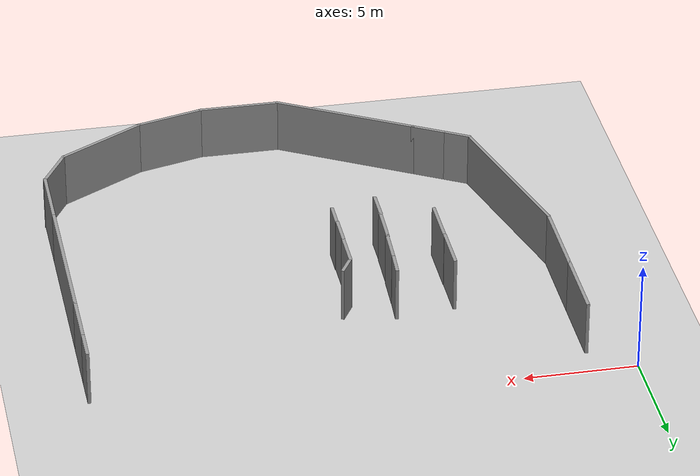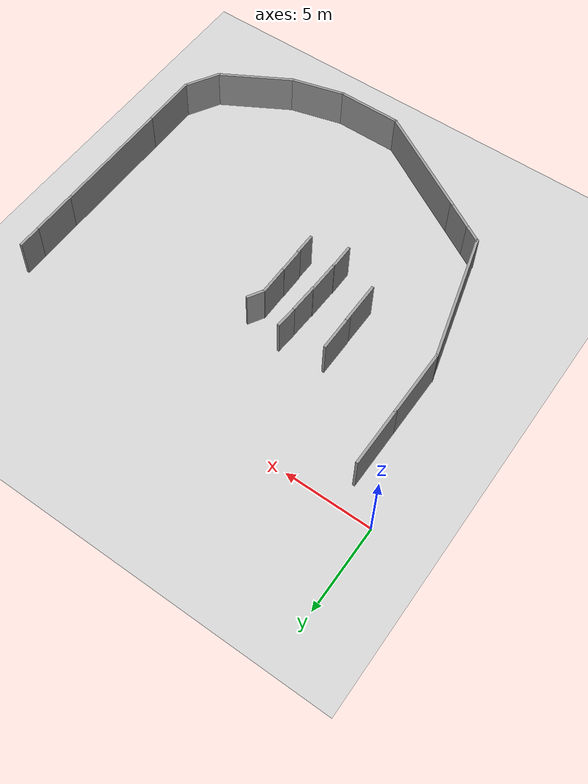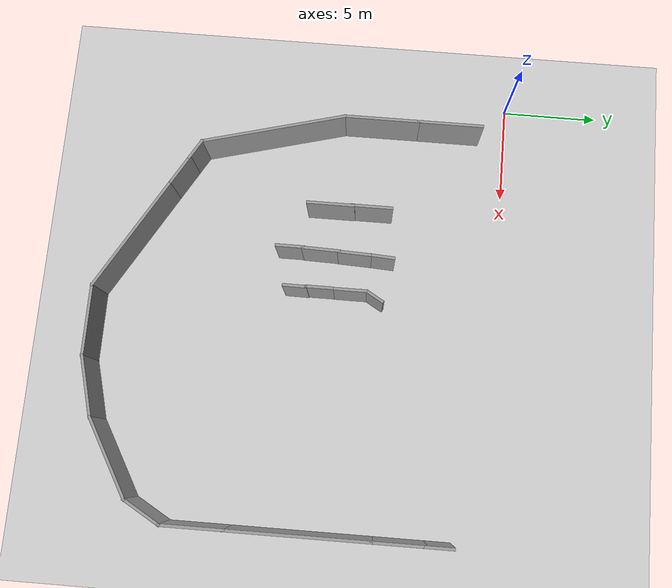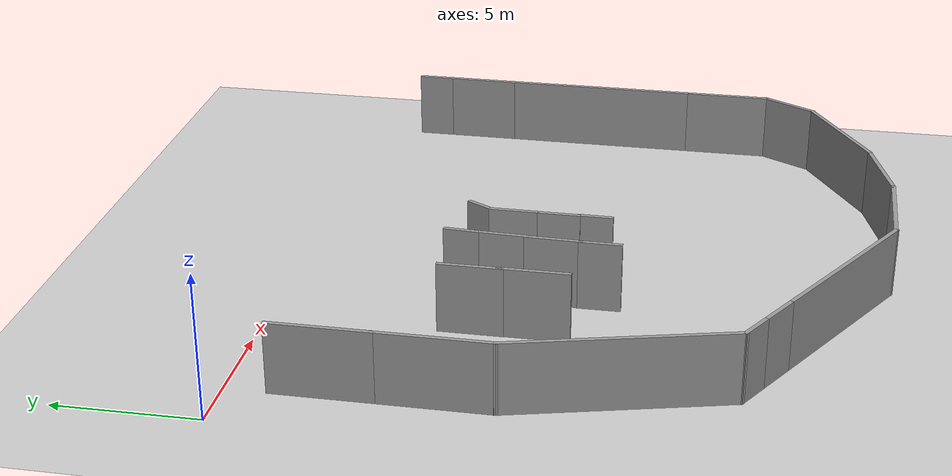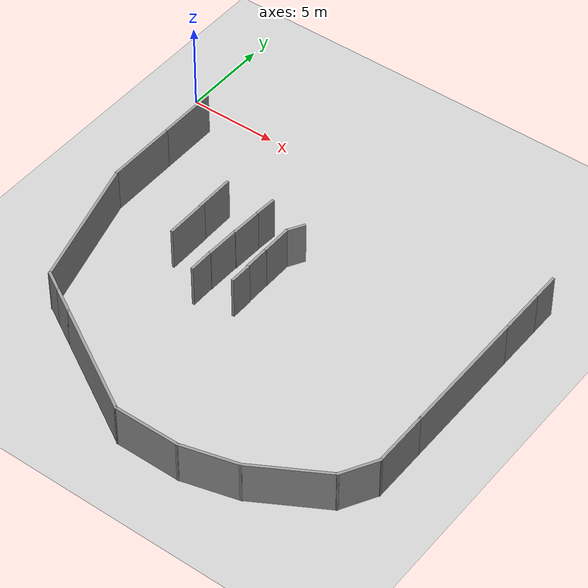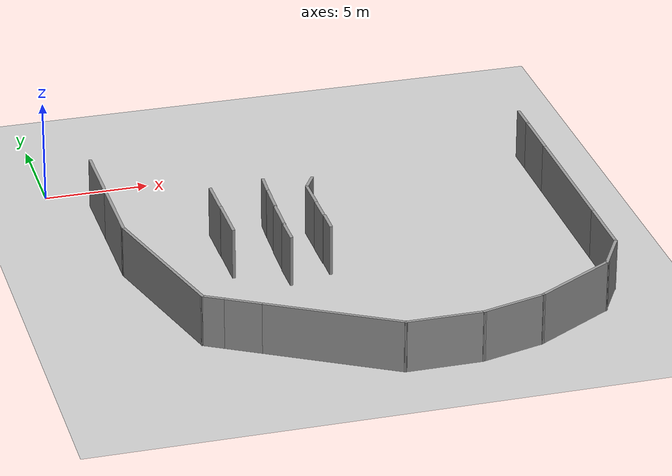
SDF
<sdf version="1.6">
 <world name="default">
  <model name="ground_plane">
   <static>1</static>
   <link name="link">
    <collision name="collision">
     <geometry><plane><normal>0 0 1</normal><size>100 100</size></plane></geometry>
     <surface><friction><ode><mu>100</mu><mu2>50</mu2></ode></friction></surface>
    </collision>
    <visual name="visual">
     <cast_shadows>0</cast_shadows>
     <geometry><plane><normal>0 0 1</normal><size>100 100</size></plane></geometry>
     <material>
      <script><uri>file://media/materials/scripts/gazebo.material</uri><name>Gazebo/Grey</name></script>
     </material>
    </visual>
   </link>
  </model>
  <model name="c-Snail_v3">
   <link name="Wall_19">
    <pose>0.800174 -5.81597 0 0 -0 0</pose>
    <visual name="Wall_19_Visual">
     <pose>0 0 1.25 0 -0 0</pose>
     <geometry><box><size>2.25 0.15 2.5</size></box></geometry>
     <material>
      <script><uri>file://media/materials/scripts/gazebo.material</uri><name>Gazebo/Grey</name></script>
      <ambient>1 1 1 1</ambient>
     </material>
     <meta><layer>0</layer></meta>
    </visual>
    <collision name="Wall_19_Collision">
     <pose>0 0 1.25 0 -0 0</pose>
     <geometry><box><size>2.25 0.15 2.5</size></box></geometry>
     <surface>
      <friction>
       <ode><mu>1</mu><mu2>1</mu2><fdir1>0 0 0</fdir1><slip1>0</slip1><slip2>0</slip2></ode>
       <torsional>
        <coefficient>1</coefficient>
        <patch_radius>0</patch_radius>
        <surface_radius>0</surface_radius>
        <use_patch_radius>1</use_patch_radius>
        <ode><slip>0</slip></ode>
       </torsional>
      </friction>
      <bounce><restitution_coefficient>0</restitution_coefficient><threshold>1e+06</threshold></bounce>
      <contact>
       <collide_without_contact>0</collide_without_contact>
       <collide_without_contact_bitmask>1</collide_without_contact_bitmask>
       <collide_bitmask>1</collide_bitmask>
       <ode>
        <soft_cfm>0</soft_cfm>
        <soft_erp>0.2</soft_erp>
        <kp>1e+13</kp>
        <kd>1</kd>
        <max_vel>0.01</max_vel>
        <min_depth>0</min_depth>
       </ode>
       <bullet>
        <split_impulse>1</split_impulse>
        <split_impulse_penetration_threshold>-0.01</split_impulse_penetration_threshold>
        <soft_cfm>0</soft_cfm>
        <soft_erp>0.2</soft_erp>
        <kp>1e+13</kp>
        <kd>1</kd>
       </bullet>
      </contact>
     </surface>
    </collision>
   </link>
   <link name="Wall_20">
    <pose>2.90214 -5.80096 0 0 -0 0</pose>
    <visual name="Wall_20_Visual">
     <pose>0 0 1.25 0 -0 0</pose>
     <geometry><box><size>2.5 0.15 2.5</size></box></geometry>
     <material>
      <script><uri>file://media/materials/scripts/gazebo.material</uri><name>Gazebo/Grey</name></script>
      <ambient>1 1 1 1</ambient>
     </material>
     <meta><layer>0</layer></meta>
    </visual>
    <collision name="Wall_20_Collision">
     <pose>0 0 1.25 0 -0 0</pose>
     <geometry><box><size>2.5 0.15 2.5</size></box></geometry>
     <surface>
      <friction>
       <ode><mu>1</mu><mu2>1</mu2><fdir1>0 0 0</fdir1><slip1>0</slip1><slip2>0</slip2></ode>
       <torsional>
        <coefficient>1</coefficient>
        <patch_radius>0</patch_radius>
        <surface_radius>0</surface_radius>
        <use_patch_radius>1</use_patch_radius>
        <ode><slip>0</slip></ode>
       </torsional>
      </friction>
      <bounce><restitution_coefficient>0</restitution_coefficient><threshold>1e+06</threshold></bounce>
      <contact>
       <collide_without_contact>0</collide_without_contact>
       <collide_without_contact_bitmask>1</collide_without_contact_bitmask>
       <collide_bitmask>1</collide_bitmask>
       <ode>
        <soft_cfm>0</soft_cfm>
        <soft_erp>0.2</soft_erp>
        <kp>1e+13</kp>
        <kd>1</kd>
        <max_vel>0.01</max_vel>
        <min_depth>0</min_depth>
       </ode>
       <bullet>
        <split_impulse>1</split_impulse>
        <split_impulse_penetration_threshold>-0.01</split_impulse_penetration_threshold>
        <soft_cfm>0</soft_cfm>
        <soft_erp>0.2</soft_erp>
        <kp>1e+13</kp>
        <kd>1</kd>
       </bullet>
      </contact>
     </surface>
    </collision>
   </link>
   <link name="Wall_46">
    <pose>0.001242 -3.22352 -0 0 0 -0.065231</pose>
    <visual name="Wall_46_Visual">
     <pose>0 0 1.25 0 -0 0</pose>
     <geometry><box><size>1.25 0.15 2.5</size></box></geometry>
     <material>
      <script><uri>file://media/materials/scripts/gazebo.material</uri><name>Gazebo/Grey</name></script>
      <ambient>1 1 1 1</ambient>
     </material>
     <meta><layer>0</layer></meta>
    </visual>
    <collision name="Wall_46_Collision">
     <pose>0 0 1.25 0 -0 0</pose>
     <geometry><box><size>1.25 0.15 2.5</size></box></geometry>
     <surface>
      <friction>
       <ode><mu>1</mu><mu2>1</mu2><fdir1>0 0 0</fdir1><slip1>0</slip1><slip2>0</slip2></ode>
       <torsional>
        <coefficient>1</coefficient>
        <patch_radius>0</patch_radius>
        <surface_radius>0</surface_radius>
        <use_patch_radius>1</use_patch_radius>
        <ode><slip>0</slip></ode>
       </torsional>
      </friction>
      <bounce><restitution_coefficient>0</restitution_coefficient><threshold>1e+06</threshold></bounce>
      <contact>
       <collide_without_contact>0</collide_without_contact>
       <collide_without_contact_bitmask>1</collide_without_contact_bitmask>
       <collide_bitmask>1</collide_bitmask>
       <ode>
        <soft_cfm>0</soft_cfm>
        <soft_erp>0.2</soft_erp>
        <kp>1e+13</kp>
        <kd>1</kd>
        <max_vel>0.01</max_vel>
        <min_depth>0</min_depth>
       </ode>
       <bullet>
        <split_impulse>1</split_impulse>
        <split_impulse_penetration_threshold>-0.01</split_impulse_penetration_threshold>
        <soft_cfm>0</soft_cfm>
        <soft_erp>0.2</soft_erp>
        <kp>1e+13</kp>
        <kd>1</kd>
       </bullet>
      </contact>
     </surface>
    </collision>
   </link>
   <link name="Wall_47">
    <pose>1.4692 -3.29142 0 0 0 -0.040966</pose>
    <visual name="Wall_47_Visual">
     <pose>0 0 1.25 0 -0 0</pose>
     <geometry><box><size>1.75 0.15 2.5</size></box></geometry>
     <material>
      <script><uri>file://media/materials/scripts/gazebo.material</uri><name>Gazebo/Grey</name></script>
      <ambient>1 1 1 1</ambient>
     </material>
     <meta><layer>0</layer></meta>
    </visual>
    <collision name="Wall_47_Collision">
     <pose>0 0 1.25 0 -0 0</pose>
     <geometry><box><size>1.75 0.15 2.5</size></box></geometry>
     <surface>
      <friction>
       <ode><mu>1</mu><mu2>1</mu2><fdir1>0 0 0</fdir1><slip1>0</slip1><slip2>0</slip2></ode>
       <torsional>
        <coefficient>1</coefficient>
        <patch_radius>0</patch_radius>
        <surface_radius>0</surface_radius>
        <use_patch_radius>1</use_patch_radius>
        <ode><slip>0</slip></ode>
       </torsional>
      </friction>
      <bounce><restitution_coefficient>0</restitution_coefficient><threshold>1e+06</threshold></bounce>
      <contact>
       <collide_without_contact>0</collide_without_contact>
       <collide_without_contact_bitmask>1</collide_without_contact_bitmask>
       <collide_bitmask>1</collide_bitmask>
       <ode>
        <soft_cfm>0</soft_cfm>
        <soft_erp>0.2</soft_erp>
        <kp>1e+13</kp>
        <kd>1</kd>
        <max_vel>0.01</max_vel>
        <min_depth>0</min_depth>
       </ode>
       <bullet>
        <split_impulse>1</split_impulse>
        <split_impulse_penetration_threshold>-0.01</split_impulse_penetration_threshold>
        <soft_cfm>0</soft_cfm>
        <soft_erp>0.2</soft_erp>
        <kp>1e+13</kp>
        <kd>1</kd>
       </bullet>
      </contact>
     </surface>
    </collision>
   </link>
   <link name="Wall_48">
    <pose>3.18497 -3.36606 0 0 0 -0.02609</pose>
    <visual name="Wall_48_Visual">
     <pose>0 0 1.25 0 -0 0</pose>
     <geometry><box><size>2 0.15 2.5</size></box></geometry>
     <material>
      <script><uri>file://media/materials/scripts/gazebo.material</uri><name>Gazebo/Grey</name></script>
      <ambient>1 1 1 1</ambient>
     </material>
     <meta><layer>0</layer></meta>
    </visual>
    <collision name="Wall_48_Collision">
     <pose>0 0 1.25 0 -0 0</pose>
     <geometry><box><size>2 0.15 2.5</size></box></geometry>
     <surface>
      <friction>
       <ode><mu>1</mu><mu2>1</mu2><fdir1>0 0 0</fdir1><slip1>0</slip1><slip2>0</slip2></ode>
       <torsional>
        <coefficient>1</coefficient>
        <patch_radius>0</patch_radius>
        <surface_radius>0</surface_radius>
        <use_patch_radius>1</use_patch_radius>
        <ode><slip>0</slip></ode>
       </torsional>
      </friction>
      <bounce><restitution_coefficient>0</restitution_coefficient><threshold>1e+06</threshold></bounce>
      <contact>
       <collide_without_contact>0</collide_without_contact>
       <collide_without_contact_bitmask>1</collide_without_contact_bitmask>
       <collide_bitmask>1</collide_bitmask>
       <ode>
        <soft_cfm>0</soft_cfm>
        <soft_erp>0.2</soft_erp>
        <kp>1e+13</kp>
        <kd>1</kd>
        <max_vel>0.01</max_vel>
        <min_depth>0</min_depth>
       </ode>
       <bullet>
        <split_impulse>1</split_impulse>
        <split_impulse_penetration_threshold>-0.01</split_impulse_penetration_threshold>
        <soft_cfm>0</soft_cfm>
        <soft_erp>0.2</soft_erp>
        <kp>1e+13</kp>
        <kd>1</kd>
       </bullet>
      </contact>
     </surface>
    </collision>
   </link>
   <link name="Wall_49">
    <pose>4.78497 -3.4097 0 0 -0 0</pose>
    <visual name="Wall_49_Visual">
     <pose>0 0 1.25 0 -0 0</pose>
     <geometry><box><size>1.5 0.15 2.5</size></box></geometry>
     <material>
      <script><uri>file://media/materials/scripts/gazebo.material</uri><name>Gazebo/Grey</name></script>
      <ambient>1 1 1 1</ambient>
     </material>
     <meta><layer>0</layer></meta>
    </visual>
    <collision name="Wall_49_Collision">
     <pose>0 0 1.25 0 -0 0</pose>
     <geometry><box><size>1.5 0.15 2.5</size></box></geometry>
     <surface>
      <friction>
       <ode><mu>1</mu><mu2>1</mu2><fdir1>0 0 0</fdir1><slip1>0</slip1><slip2>0</slip2></ode>
       <torsional>
        <coefficient>1</coefficient>
        <patch_radius>0</patch_radius>
        <surface_radius>0</surface_radius>
        <use_patch_radius>1</use_patch_radius>
        <ode><slip>0</slip></ode>
       </torsional>
      </friction>
      <bounce><restitution_coefficient>0</restitution_coefficient><threshold>1e+06</threshold></bounce>
      <contact>
       <collide_without_contact>0</collide_without_contact>
       <collide_without_contact_bitmask>1</collide_without_contact_bitmask>
       <collide_bitmask>1</collide_bitmask>
       <ode>
        <soft_cfm>0</soft_cfm>
        <soft_erp>0.2</soft_erp>
        <kp>1e+13</kp>
        <kd>1</kd>
        <max_vel>0.01</max_vel>
        <min_depth>0</min_depth>
       </ode>
       <bullet>
        <split_impulse>1</split_impulse>
        <split_impulse_penetration_threshold>-0.01</split_impulse_penetration_threshold>
        <soft_cfm>0</soft_cfm>
        <soft_erp>0.2</soft_erp>
        <kp>1e+13</kp>
        <kd>1</kd>
       </bullet>
      </contact>
     </surface>
    </collision>
   </link>
   <link name="Wall_69">
    <pose>0.240975 -1.11854 0 0 0 -0.523599</pose>
    <visual name="Wall_69_Visual">
     <pose>0 0 1.25 0 -0 0</pose>
     <geometry><box><size>1 0.15 2.5</size></box></geometry>
     <material>
      <script><uri>file://media/materials/scripts/gazebo.material</uri><name>Gazebo/Grey</name></script>
      <ambient>1 1 1 1</ambient>
     </material>
     <meta><layer>0</layer></meta>
    </visual>
    <collision name="Wall_69_Collision">
     <pose>0 0 1.25 0 -0 0</pose>
     <geometry><box><size>1 0.15 2.5</size></box></geometry>
     <surface>
      <friction>
       <ode><mu>1</mu><mu2>1</mu2><fdir1>0 0 0</fdir1><slip1>0</slip1><slip2>0</slip2></ode>
       <torsional>
        <coefficient>1</coefficient>
        <patch_radius>0</patch_radius>
        <surface_radius>0</surface_radius>
        <use_patch_radius>1</use_patch_radius>
        <ode><slip>0</slip></ode>
       </torsional>
      </friction>
      <bounce><restitution_coefficient>0</restitution_coefficient><threshold>1e+06</threshold></bounce>
      <contact>
       <collide_without_contact>0</collide_without_contact>
       <collide_without_contact_bitmask>1</collide_without_contact_bitmask>
       <collide_bitmask>1</collide_bitmask>
       <ode>
        <soft_cfm>0</soft_cfm>
        <soft_erp>0.2</soft_erp>
        <kp>1e+13</kp>
        <kd>1</kd>
        <max_vel>0.01</max_vel>
        <min_depth>0</min_depth>
       </ode>
       <bullet>
        <split_impulse>1</split_impulse>
        <split_impulse_penetration_threshold>-0.01</split_impulse_penetration_threshold>
        <soft_cfm>0</soft_cfm>
        <soft_erp>0.2</soft_erp>
        <kp>1e+13</kp>
        <kd>1</kd>
       </bullet>
      </contact>
     </surface>
    </collision>
   </link>
   <link name="Wall_70">
    <pose>1.50322 -1.37769 0 0 -0 0</pose>
    <visual name="Wall_70_Visual">
     <pose>0 0 1.25 0 -0 0</pose>
     <geometry><box><size>1.75 0.15 2.5</size></box></geometry>
     <material>
      <script><uri>file://media/materials/scripts/gazebo.material</uri><name>Gazebo/Grey</name></script>
      <ambient>1 1 1 1</ambient>
     </material>
     <meta><layer>0</layer></meta>
    </visual>
    <collision name="Wall_70_Collision">
     <pose>0 0 1.25 0 -0 0</pose>
     <geometry><box><size>1.75 0.15 2.5</size></box></geometry>
     <surface>
      <friction>
       <ode><mu>1</mu><mu2>1</mu2><fdir1>0 0 0</fdir1><slip1>0</slip1><slip2>0</slip2></ode>
       <torsional>
        <coefficient>1</coefficient>
        <patch_radius>0</patch_radius>
        <surface_radius>0</surface_radius>
        <use_patch_radius>1</use_patch_radius>
        <ode><slip>0</slip></ode>
       </torsional>
      </friction>
      <bounce><restitution_coefficient>0</restitution_coefficient><threshold>1e+06</threshold></bounce>
      <contact>
       <collide_without_contact>0</collide_without_contact>
       <collide_without_contact_bitmask>1</collide_without_contact_bitmask>
       <collide_bitmask>1</collide_bitmask>
       <ode>
        <soft_cfm>0</soft_cfm>
        <soft_erp>0.2</soft_erp>
        <kp>1e+13</kp>
        <kd>1</kd>
        <max_vel>0.01</max_vel>
        <min_depth>0</min_depth>
       </ode>
       <bullet>
        <split_impulse>1</split_impulse>
        <split_impulse_penetration_threshold>-0.01</split_impulse_penetration_threshold>
        <soft_cfm>0</soft_cfm>
        <soft_erp>0.2</soft_erp>
        <kp>1e+13</kp>
        <kd>1</kd>
       </bullet>
      </contact>
     </surface>
    </collision>
   </link>
   <link name="Wall_71">
    <pose>3.08758 -1.38978 0 0 -0 0</pose>
    <visual name="Wall_71_Visual">
     <pose>0 0 1.25 0 -0 0</pose>
     <geometry><box><size>1.5 0.15 2.5</size></box></geometry>
     <material>
      <script><uri>file://media/materials/scripts/gazebo.material</uri><name>Gazebo/Grey</name></script>
      <ambient>1 1 1 1</ambient>
     </material>
     <meta><layer>0</layer></meta>
    </visual>
    <collision name="Wall_71_Collision">
     <pose>0 0 1.25 0 -0 0</pose>
     <geometry><box><size>1.5 0.15 2.5</size></box></geometry>
     <surface>
      <friction>
       <ode><mu>1</mu><mu2>1</mu2><fdir1>0 0 0</fdir1><slip1>0</slip1><slip2>0</slip2></ode>
       <torsional>
        <coefficient>1</coefficient>
        <patch_radius>0</patch_radius>
        <surface_radius>0</surface_radius>
        <use_patch_radius>1</use_patch_radius>
        <ode><slip>0</slip></ode>
       </torsional>
      </friction>
      <bounce><restitution_coefficient>0</restitution_coefficient><threshold>1e+06</threshold></bounce>
      <contact>
       <collide_without_contact>0</collide_without_contact>
       <collide_without_contact_bitmask>1</collide_without_contact_bitmask>
       <collide_bitmask>1</collide_bitmask>
       <ode>
        <soft_cfm>0</soft_cfm>
        <soft_erp>0.2</soft_erp>
        <kp>1e+13</kp>
        <kd>1</kd>
        <max_vel>0.01</max_vel>
        <min_depth>0</min_depth>
       </ode>
       <bullet>
        <split_impulse>1</split_impulse>
        <split_impulse_penetration_threshold>-0.01</split_impulse_penetration_threshold>
        <soft_cfm>0</soft_cfm>
        <soft_erp>0.2</soft_erp>
        <kp>1e+13</kp>
        <kd>1</kd>
       </bullet>
      </contact>
     </surface>
    </collision>
   </link>
   <link name="Wall_72">
    <pose>4.35541 -1.36839 0 0 0 -0.011462</pose>
    <visual name="Wall_72_Visual">
     <pose>0 0 1.25 0 -0 0</pose>
     <geometry><box><size>1.25 0.15 2.5</size></box></geometry>
     <material>
      <script><uri>file://media/materials/scripts/gazebo.material</uri><name>Gazebo/Grey</name></script>
      <ambient>1 1 1 1</ambient>
     </material>
     <meta><layer>0</layer></meta>
    </visual>
    <collision name="Wall_72_Collision">
     <pose>0 0 1.25 0 -0 0</pose>
     <geometry><box><size>1.25 0.15 2.5</size></box></geometry>
     <surface>
      <friction>
       <ode><mu>1</mu><mu2>1</mu2><fdir1>0 0 0</fdir1><slip1>0</slip1><slip2>0</slip2></ode>
       <torsional>
        <coefficient>1</coefficient>
        <patch_radius>0</patch_radius>
        <surface_radius>0</surface_radius>
        <use_patch_radius>1</use_patch_radius>
        <ode><slip>0</slip></ode>
       </torsional>
      </friction>
      <bounce><restitution_coefficient>0</restitution_coefficient><threshold>1e+06</threshold></bounce>
      <contact>
       <collide_without_contact>0</collide_without_contact>
       <collide_without_contact_bitmask>1</collide_without_contact_bitmask>
       <collide_bitmask>1</collide_bitmask>
       <ode>
        <soft_cfm>0</soft_cfm>
        <soft_erp>0.2</soft_erp>
        <kp>1e+13</kp>
        <kd>1</kd>
        <max_vel>0.01</max_vel>
        <min_depth>0</min_depth>
       </ode>
       <bullet>
        <split_impulse>1</split_impulse>
        <split_impulse_penetration_threshold>-0.01</split_impulse_penetration_threshold>
        <soft_cfm>0</soft_cfm>
        <soft_erp>0.2</soft_erp>
        <kp>1e+13</kp>
        <kd>1</kd>
       </bullet>
      </contact>
     </surface>
    </collision>
   </link>
   <static>1</static>
   <pose>12.5718 -6.1346 0 0 0 -1.57044</pose>
  </model>
  <model name="cage">
   <pose>12.6559 -11.085 0 0 -0 0</pose>
   <link name="Wall_12">
    <collision name="Wall_12_Collision">
     <geometry><box><size>3.5 0.15 2.5</size></box></geometry>
     <pose>0 0 1.25 0 -0 0</pose>
    </collision>
    <visual name="Wall_12_Visual">
     <pose>0 0 1.25 0 -0 0</pose>
     <geometry><box><size>3.5 0.15 2.5</size></box></geometry>
     <material>
      <script><uri>file://media/materials/scripts/gazebo.material</uri><name>Gazebo/Grey</name></script>
      <ambient>1 1 1 1</ambient>
     </material>
     <meta><layer>0</layer></meta>
    </visual>
    <pose>-10.7216 7.93424 0 0 -0 -1.5708</pose>
   </link>
   <link name="Wall_13">
    <collision name="Wall_13_Collision">
     <geometry><box><size>4 0.15 2.5</size></box></geometry>
     <pose>0 0 1.25 0 -0 0</pose>
    </collision>
    <visual name="Wall_13_Visual">
     <pose>0 0 1.25 0 -0 0</pose>
     <geometry><box><size>4 0.15 2.5</size></box></geometry>
     <material>
      <script><uri>file://media/materials/scripts/gazebo.material</uri><name>Gazebo/Grey</name></script>
      <ambient>1 1 1 1</ambient>
     </material>
     <meta><layer>0</layer></meta>
    </visual>
    <pose>-10.7216 4.33425 0 0 -0 -1.5708</pose>
   </link>
   <link name="Wall_14">
    <collision name="Wall_14_Collision">
     <geometry><box><size>7.75 0.15 2.5</size></box></geometry>
     <pose>0 0 1.25 0 -0 0</pose>
    </collision>
    <visual name="Wall_14_Visual">
     <pose>0 0 1.25 0 -0 0</pose>
     <geometry><box><size>7.75 0.15 2.5</size></box></geometry>
     <material>
      <script><uri>file://media/materials/scripts/gazebo.material</uri><name>Gazebo/Grey</name></script>
      <ambient>1 1 1 1</ambient>
     </material>
     <meta><layer>0</layer></meta>
    </visual>
    <pose>-9.73811 -1.26127 0 0 -0 -1.309</pose>
   </link>
   <link name="Wall_15">
    <collision name="Wall_15_Collision">
     <geometry><box><size>1.25 0.15 2.5</size></box></geometry>
     <pose>0 0 1.25 0 -0 0</pose>
    </collision>
    <visual name="Wall_15_Visual">
     <pose>0 0 1.25 0 -0 0</pose>
     <geometry><box><size>1.25 0.15 2.5</size></box></geometry>
     <material>
      <script><uri>file://media/materials/scripts/gazebo.material</uri><name>Gazebo/Grey</name></script>
      <ambient>1 1 1 1</ambient>
     </material>
     <meta><layer>0</layer></meta>
    </visual>
    <pose>-8.27828 -5.20679 0 0 -0 -0.523599</pose>
   </link>
   <link name="Wall_16">
    <collision name="Wall_16_Collision">
     <geometry><box><size>1.75 0.15 2.5</size></box></geometry>
     <pose>0 0 1.25 0 -0 0</pose>
    </collision>
    <visual name="Wall_16_Visual">
     <pose>0 0 1.25 0 -0 0</pose>
     <geometry><box><size>1.75 0.15 2.5</size></box></geometry>
     <material>
      <script><uri>file://media/materials/scripts/gazebo.material</uri><name>Gazebo/Grey</name></script>
      <ambient>1 1 1 1</ambient>
     </material>
     <meta><layer>0</layer></meta>
    </visual>
    <pose>-7.10914 -5.88179 0 0 -0 -0.523599</pose>
   </link>
   <link name="Wall_17">
    <collision name="Wall_17_Collision">
     <geometry><box><size>6.75 0.15 2.5</size></box></geometry>
     <pose>0 0 1.25 0 -0 0</pose>
    </collision>
    <visual name="Wall_17_Visual">
     <pose>0 0 1.25 0 -0 0</pose>
     <geometry><box><size>6.75 0.15 2.5</size></box></geometry>
     <material>
      <script><uri>file://media/materials/scripts/gazebo.material</uri><name>Gazebo/Grey</name></script>
      <ambient>1 1 1 1</ambient>
     </material>
     <meta><layer>0</layer></meta>
    </visual>
    <pose>-3.55844 -7.93179 0 0 -0 -0.523599</pose>
   </link>
   <link name="Wall_18">
    <collision name="Wall_18_Collision">
     <geometry><box><size>3.75 0.15 2.5</size></box></geometry>
     <pose>0 0 1.25 0 -0 0</pose>
    </collision>
    <visual name="Wall_18_Visual">
     <pose>0 0 1.25 0 -0 0</pose>
     <geometry><box><size>3.75 0.15 2.5</size></box></geometry>
     <material>
      <script><uri>file://media/materials/scripts/gazebo.material</uri><name>Gazebo/Grey</name></script>
      <ambient>1 1 1 1</ambient>
     </material>
     <meta><layer>0</layer></meta>
    </visual>
    <pose>1.09944 -9.58179 0 0 -0 0</pose>
   </link>
   <link name="Wall_19">
    <collision name="Wall_19_Collision">
     <geometry><box><size>3.25 0.15 2.5</size></box></geometry>
     <pose>0 0 1.25 0 -0 0</pose>
    </collision>
    <visual name="Wall_19_Visual">
     <pose>0 0 1.25 0 -0 0</pose>
     <geometry><box><size>3.25 0.15 2.5</size></box></geometry>
     <material>
      <script><uri>file://media/materials/scripts/gazebo.material</uri><name>Gazebo/Grey</name></script>
      <ambient>1 1 1 1</ambient>
     </material>
     <meta><layer>0</layer></meta>
    </visual>
    <pose>4.39663 -9.18062 0 0 -0 0.261799</pose>
   </link>
   <link name="Wall_20">
    <collision name="Wall_20_Collision">
     <geometry><box><size>4.5 0.15 2.5</size></box></geometry>
     <pose>0 0 1.25 0 -0 0</pose>
    </collision>
    <visual name="Wall_20_Visual">
     <pose>0 0 1.25 0 -0 0</pose>
     <geometry><box><size>4.5 0.15 2.5</size></box></geometry>
     <material>
      <script><uri>file://media/materials/scripts/gazebo.material</uri><name>Gazebo/Grey</name></script>
      <ambient>1 1 1 1</ambient>
     </material>
     <meta><layer>0</layer></meta>
    </visual>
    <pose>7.77742 -7.69195 0 0 -0 0.523599</pose>
   </link>
   <link name="Wall_21">
    <collision name="Wall_21_Collision">
     <geometry><box><size>2.25 0.15 2.5</size></box></geometry>
     <pose>0 0 1.25 0 -0 0</pose>
    </collision>
    <visual name="Wall_21_Visual">
     <pose>0 0 1.25 0 -0 0</pose>
     <geometry><box><size>2.25 0.15 2.5</size></box></geometry>
     <material>
      <script><uri>file://media/materials/scripts/gazebo.material</uri><name>Gazebo/Grey</name></script>
      <ambient>1 1 1 1</ambient>
     </material>
     <meta><layer>0</layer></meta>
    </visual>
    <pose>10.186 -5.69513 0 0 -0 1.0472</pose>
   </link>
   <link name="Wall_22">
    <collision name="Wall_22_Collision">
     <geometry><box><size>3.25 0.15 2.5</size></box></geometry>
     <pose>0 0 1.25 0 -0 0</pose>
    </collision>
    <visual name="Wall_22_Visual">
     <pose>0 0 1.25 0 -0 0</pose>
     <geometry><box><size>3.25 0.15 2.5</size></box></geometry>
     <material>
      <script><uri>file://media/materials/scripts/gazebo.material</uri><name>Gazebo/Grey</name></script>
      <ambient>1 1 1 1</ambient>
     </material>
     <meta><layer>0</layer></meta>
    </visual>
    <pose>10.711 -3.2358 0 0 -0 1.5708</pose>
   </link>
   <link name="Wall_23">
    <collision name="Wall_23_Collision">
     <geometry><box><size>7.25 0.15 2.5</size></box></geometry>
     <pose>0 0 1.25 0 -0 0</pose>
    </collision>
    <visual name="Wall_23_Visual">
     <pose>0 0 1.25 0 -0 0</pose>
     <geometry><box><size>7.25 0.15 2.5</size></box></geometry>
     <material>
      <script><uri>file://media/materials/scripts/gazebo.material</uri><name>Gazebo/Grey</name></script>
      <ambient>1 1 1 1</ambient>
     </material>
     <meta><layer>0</layer></meta>
    </visual>
    <pose>10.711 1.8642 0 0 -0 1.5708</pose>
   </link>
   <link name="Wall_24">
    <collision name="Wall_24_Collision">
     <geometry><box><size>2.75 0.15 2.5</size></box></geometry>
     <pose>0 0 1.25 0 -0 0</pose>
    </collision>
    <visual name="Wall_24_Visual">
     <pose>0 0 1.25 0 -0 0</pose>
     <geometry><box><size>2.75 0.15 2.5</size></box></geometry>
     <material>
      <script><uri>file://media/materials/scripts/gazebo.material</uri><name>Gazebo/Grey</name></script>
      <ambient>1 1 1 1</ambient>
     </material>
     <meta><layer>0</layer></meta>
    </visual>
    <pose>10.711 6.7142 0 0 -0 1.5708</pose>
   </link>
   <link name="Wall_25">
    <collision name="Wall_25_Collision">
     <geometry><box><size>1.5 0.15 2.5</size></box></geometry>
     <pose>0 0 1.25 0 -0 0</pose>
    </collision>
    <visual name="Wall_25_Visual">
     <pose>0 0 1.25 0 -0 0</pose>
     <geometry><box><size>1.5 0.15 2.5</size></box></geometry>
     <material>
      <script><uri>file://media/materials/scripts/gazebo.material</uri><name>Gazebo/Grey</name></script>
      <ambient>1 1 1 1</ambient>
     </material>
     <meta><layer>0</layer></meta>
    </visual>
    <pose>10.711 8.6892 0 0 -0 1.5708</pose>
   </link>
   <static>1</static>
  </model>
 </world>
</sdf>
